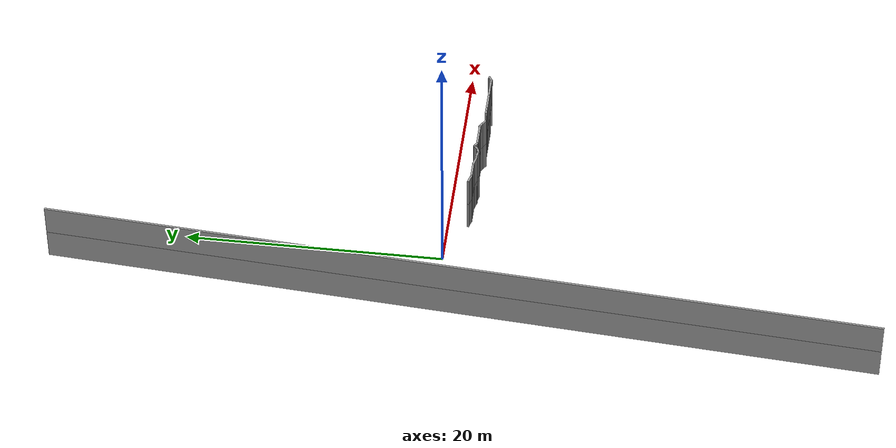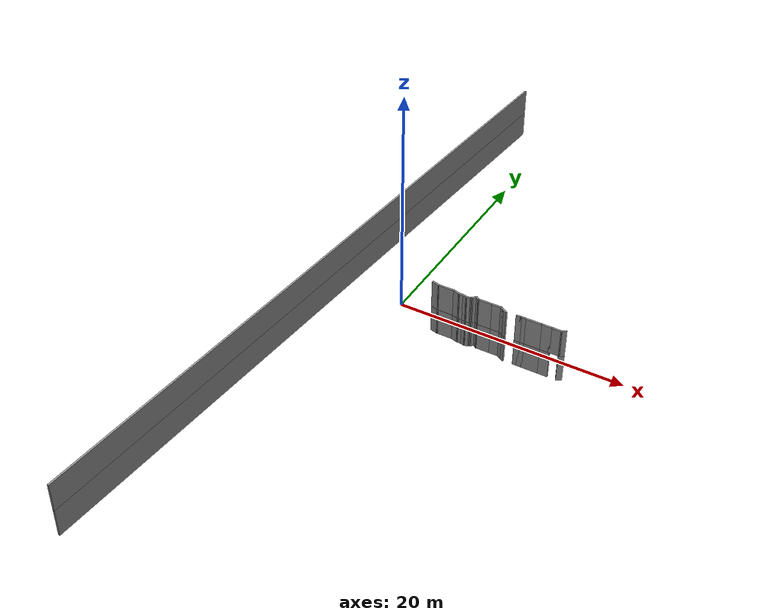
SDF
<sdf version="1.7">
 <model name="EnvDC00">
  <pose>8.4191 -5.62635 0 0 -0 0</pose>
  <link name="Wall_128">
   <collision name="Wall_128_Collision">
    <geometry><box><size>64.2999 0.15 2.5</size></box></geometry>
    <pose>0 0 1.25 0 -0 0</pose>
   </collision>
   <visual name="Wall_128_Visual">
    <pose>0 0 1.25 0 -0 0</pose>
    <geometry><box><size>64.2999 0.15 2.5</size></box></geometry>
    <material>
     <script><uri>file://media/materials/scripts/gazebo.material</uri><name>Gazebo/Grey</name></script>
     <ambient>1 1 1 1</ambient>
    </material>
    <meta><layer>0</layer></meta>
   </visual>
   <pose>-13.8802 3.78282 0 0 -0 -1.64555</pose>
  </link>
  <link name="Wall_143">
   <collision name="Wall_143_Collision">
    <geometry><box><size>0.5 0.15 2.5</size></box></geometry>
    <pose>0 0 1.25 0 -0 0</pose>
   </collision>
   <visual name="Wall_143_Visual">
    <pose>0 0 1.25 0 -0 0</pose>
    <geometry><box><size>0.5 0.15 2.5</size></box></geometry>
    <material>
     <script><uri>file://media/materials/scripts/gazebo.material</uri><name>Gazebo/Grey</name></script>
     <ambient>1 1 1 1</ambient>
    </material>
    <meta><layer>0</layer></meta>
   </visual>
   <pose>6.88604 3.68358 0 0 -0 -2.61799</pose>
  </link>
  <link name="Wall_146">
   <collision name="Wall_146_Collision">
    <geometry><box><size>1 0.15 2.5</size></box></geometry>
    <pose>0 0 1.25 0 -0 0</pose>
   </collision>
   <visual name="Wall_146_Visual">
    <pose>0 0 1.25 0 -0 0</pose>
    <geometry><box><size>1 0.15 2.5</size></box></geometry>
    <material>
     <script><uri>file://media/materials/scripts/gazebo.material</uri><name>Gazebo/Grey</name></script>
     <ambient>1 1 1 1</ambient>
    </material>
    <meta><layer>0</layer></meta>
   </visual>
   <pose>5.45949 3.59608 0 0 -0 3.14159</pose>
  </link>
  <link name="Wall_147">
   <collision name="Wall_147_Collision">
    <geometry><box><size>1.5 0.15 2.5</size></box></geometry>
    <pose>0 0 1.25 0 -0 0</pose>
   </collision>
   <visual name="Wall_147_Visual">
    <pose>0 0 1.25 0 -0 0</pose>
    <geometry><box><size>1.5 0.15 2.5</size></box></geometry>
    <material>
     <script><uri>file://media/materials/scripts/gazebo.material</uri><name>Gazebo/Grey</name></script>
     <ambient>1 1 1 1</ambient>
    </material>
    <meta><layer>0</layer></meta>
   </visual>
   <pose>4.35949 3.59608 0 0 -0 3.14159</pose>
  </link>
  <link name="Wall_148">
   <collision name="Wall_148_Collision">
    <geometry><box><size>0.5 0.15 2.5</size></box></geometry>
    <pose>0 0 1.25 0 -0 0</pose>
   </collision>
   <visual name="Wall_148_Visual">
    <pose>0 0 1.25 0 -0 0</pose>
    <geometry><box><size>0.5 0.15 2.5</size></box></geometry>
    <material>
     <script><uri>file://media/materials/scripts/gazebo.material</uri><name>Gazebo/Grey</name></script>
     <ambient>1 1 1 1</ambient>
    </material>
    <meta><layer>0</layer></meta>
   </visual>
   <pose>3.50949 3.59608 0 0 -0 3.14159</pose>
  </link>
  <link name="Wall_149">
   <collision name="Wall_149_Collision">
    <geometry><box><size>0.5 0.15 2.5</size></box></geometry>
    <pose>0 0 1.25 0 -0 0</pose>
   </collision>
   <visual name="Wall_149_Visual">
    <pose>0 0 1.25 0 -0 0</pose>
    <geometry><box><size>0.5 0.15 2.5</size></box></geometry>
    <material>
     <script><uri>file://media/materials/scripts/gazebo.material</uri><name>Gazebo/Grey</name></script>
     <ambient>1 1 1 1</ambient>
    </material>
    <meta><layer>0</layer></meta>
   </visual>
   <pose>3.15949 3.59608 0 0 -0 3.14159</pose>
  </link>
  <link name="Wall_152">
   <collision name="Wall_152_Collision">
    <geometry><box><size>0.5 0.15 2.5</size></box></geometry>
    <pose>0 0 1.25 0 -0 0</pose>
   </collision>
   <visual name="Wall_152_Visual">
    <pose>0 0 1.25 0 -0 0</pose>
    <geometry><box><size>0.5 0.15 2.5</size></box></geometry>
    <material>
     <script><uri>file://media/materials/scripts/gazebo.material</uri><name>Gazebo/Grey</name></script>
     <ambient>1 1 1 1</ambient>
    </material>
    <meta><layer>0</layer></meta>
   </visual>
   <pose>1.91531 3.61888 0 0 -0 2.61799</pose>
  </link>
  <link name="Wall_153">
   <collision name="Wall_153_Collision">
    <geometry><box><size>0.5 0.15 2.5</size></box></geometry>
    <pose>0 0 1.25 0 -0 0</pose>
   </collision>
   <visual name="Wall_153_Visual">
    <pose>0 0 1.25 0 -0 0</pose>
    <geometry><box><size>0.5 0.15 2.5</size></box></geometry>
    <material>
     <script><uri>file://media/materials/scripts/gazebo.material</uri><name>Gazebo/Grey</name></script>
     <ambient>1 1 1 1</ambient>
    </material>
    <meta><layer>0</layer></meta>
   </visual>
   <pose>1.6122 3.79388 0 0 -0 2.61799</pose>
  </link>
  <link name="Wall_154">
   <collision name="Wall_154_Collision">
    <geometry><box><size>1 0.15 2.5</size></box></geometry>
    <pose>0 0 1.25 0 -0 0</pose>
   </collision>
   <visual name="Wall_154_Visual">
    <pose>0 0 1.25 0 -0 0</pose>
    <geometry><box><size>1 0.15 2.5</size></box></geometry>
    <material>
     <script><uri>file://media/materials/scripts/gazebo.material</uri><name>Gazebo/Grey</name></script>
     <ambient>1 1 1 1</ambient>
    </material>
    <meta><layer>0</layer></meta>
   </visual>
   <pose>1.03564 3.88138 0 0 -0 3.14159</pose>
  </link>
  <link name="Wall_155">
   <collision name="Wall_155_Collision">
    <geometry><box><size>1.25 0.15 2.5</size></box></geometry>
    <pose>0 0 1.25 0 -0 0</pose>
   </collision>
   <visual name="Wall_155_Visual">
    <pose>0 0 1.25 0 -0 0</pose>
    <geometry><box><size>1.25 0.15 2.5</size></box></geometry>
    <material>
     <script><uri>file://media/materials/scripts/gazebo.material</uri><name>Gazebo/Grey</name></script>
     <ambient>1 1 1 1</ambient>
    </material>
    <meta><layer>0</layer></meta>
   </visual>
   <pose>0.060643 3.88138 0 0 -0 3.14159</pose>
  </link>
  <link name="Wall_156">
   <collision name="Wall_156_Collision">
    <geometry><box><size>0.5 0.15 2.5</size></box></geometry>
    <pose>0 0 1.25 0 -0 0</pose>
   </collision>
   <visual name="Wall_156_Visual">
    <pose>0 0 1.25 0 -0 0</pose>
    <geometry><box><size>0.5 0.15 2.5</size></box></geometry>
    <material>
     <script><uri>file://media/materials/scripts/gazebo.material</uri><name>Gazebo/Grey</name></script>
     <ambient>1 1 1 1</ambient>
    </material>
    <meta><layer>0</layer></meta>
   </visual>
   <pose>-0.640912 3.96888 0 0 -0 2.61799</pose>
  </link>
  <link name="Wall_157">
   <collision name="Wall_157_Collision">
    <geometry><box><size>0.15 0.15 2.5</size></box></geometry>
    <pose>0 0 1.25 0 -0 0</pose>
   </collision>
   <visual name="Wall_157_Visual">
    <pose>0 0 1.25 0 -0 0</pose>
    <geometry><box><size>0.15 0.15 2.5</size></box></geometry>
    <material>
     <script><uri>file://media/materials/scripts/gazebo.material</uri><name>Gazebo/Grey</name></script>
     <ambient>1 1 1 1</ambient>
    </material>
    <meta><layer>0</layer></meta>
   </visual>
   <pose>-0.792467 4.05638 0 0 -0 0</pose>
  </link>
  <link name="Wall_158">
   <collision name="Wall_158_Collision">
    <geometry><box><size>0.5 0.15 2.5</size></box></geometry>
    <pose>0 0 1.25 0 -0 0</pose>
   </collision>
   <visual name="Wall_158_Visual">
    <pose>0 0 1.25 0 -0 0</pose>
    <geometry><box><size>0.5 0.15 2.5</size></box></geometry>
    <material>
     <script><uri>file://media/materials/scripts/gazebo.material</uri><name>Gazebo/Grey</name></script>
     <ambient>1 1 1 1</ambient>
    </material>
    <meta><layer>0</layer></meta>
   </visual>
   <pose>-0.91621 3.93263 0 0 -0 -2.35619</pose>
  </link>
  <link name="Wall_159">
   <collision name="Wall_159_Collision">
    <geometry><box><size>0.25 0.15 2.5</size></box></geometry>
    <pose>0 0 1.25 0 -0 0</pose>
   </collision>
   <visual name="Wall_159_Visual">
    <pose>0 0 1.25 0 -0 0</pose>
    <geometry><box><size>0.25 0.15 2.5</size></box></geometry>
    <material>
     <script><uri>file://media/materials/scripts/gazebo.material</uri><name>Gazebo/Grey</name></script>
     <ambient>1 1 1 1</ambient>
    </material>
    <meta><layer>0</layer></meta>
   </visual>
   <pose>-1.08326 3.78389 0 0 -0 -2.61799</pose>
  </link>
  <link name="Wall_160">
   <collision name="Wall_160_Collision">
    <geometry><box><size>0.5 0.15 2.5</size></box></geometry>
    <pose>0 0 1.25 0 -0 0</pose>
   </collision>
   <visual name="Wall_160_Visual">
    <pose>0 0 1.25 0 -0 0</pose>
    <geometry><box><size>0.5 0.15 2.5</size></box></geometry>
    <material>
     <script><uri>file://media/materials/scripts/gazebo.material</uri><name>Gazebo/Grey</name></script>
     <ambient>1 1 1 1</ambient>
    </material>
    <meta><layer>0</layer></meta>
   </visual>
   <pose>-1.29559 3.7136 0 0 -0 -2.87979</pose>
  </link>
  <link name="Wall_162">
   <collision name="Wall_162_Collision">
    <geometry><box><size>0.5 0.15 2.5</size></box></geometry>
    <pose>0 0 1.25 0 -0 0</pose>
   </collision>
   <visual name="Wall_162_Visual">
    <pose>0 0 1.25 0 -0 0</pose>
    <geometry><box><size>0.5 0.15 2.5</size></box></geometry>
    <material>
     <script><uri>file://media/materials/scripts/gazebo.material</uri><name>Gazebo/Grey</name></script>
     <ambient>1 1 1 1</ambient>
    </material>
    <meta><layer>0</layer></meta>
   </visual>
   <pose>-1.63367 3.7136 0 0 -0 2.87979</pose>
  </link>
  <link name="Wall_163">
   <collision name="Wall_163_Collision">
    <geometry><box><size>0.5 0.15 2.5</size></box></geometry>
    <pose>0 0 1.25 0 -0 0</pose>
   </collision>
   <visual name="Wall_163_Visual">
    <pose>0 0 1.25 0 -0 0</pose>
    <geometry><box><size>0.5 0.15 2.5</size></box></geometry>
    <material>
     <script><uri>file://media/materials/scripts/gazebo.material</uri><name>Gazebo/Grey</name></script>
     <ambient>1 1 1 1</ambient>
    </material>
    <meta><layer>0</layer></meta>
   </visual>
   <pose>-1.97771 3.75889 0 0 -0 3.14159</pose>
  </link>
  <link name="Wall_164">
   <collision name="Wall_164_Collision">
    <geometry><box><size>0.75 0.15 2.5</size></box></geometry>
    <pose>0 0 1.25 0 -0 0</pose>
   </collision>
   <visual name="Wall_164_Visual">
    <pose>0 0 1.25 0 -0 0</pose>
    <geometry><box><size>0.75 0.15 2.5</size></box></geometry>
    <material>
     <script><uri>file://media/materials/scripts/gazebo.material</uri><name>Gazebo/Grey</name></script>
     <ambient>1 1 1 1</ambient>
    </material>
    <meta><layer>0</layer></meta>
   </visual>
   <pose>-2.44248 3.83653 0 0 -0 2.87979</pose>
  </link>
  <link name="Wall_165">
   <collision name="Wall_165_Collision">
    <geometry><box><size>1.5 0.15 2.5</size></box></geometry>
    <pose>0 0 1.25 0 -0 0</pose>
   </collision>
   <visual name="Wall_165_Visual">
    <pose>0 0 1.25 0 -0 0</pose>
    <geometry><box><size>1.5 0.15 2.5</size></box></geometry>
    <material>
     <script><uri>file://media/materials/scripts/gazebo.material</uri><name>Gazebo/Grey</name></script>
     <ambient>1 1 1 1</ambient>
    </material>
    <meta><layer>0</layer></meta>
   </visual>
   <pose>-3.40726 3.91418 0 0 -0 3.14159</pose>
  </link>
  <link name="Wall_166">
   <collision name="Wall_166_Collision">
    <geometry><box><size>0.75 0.15 2.5</size></box></geometry>
    <pose>0 0 1.25 0 -0 0</pose>
   </collision>
   <visual name="Wall_166_Visual">
    <pose>0 0 1.25 0 -0 0</pose>
    <geometry><box><size>0.75 0.15 2.5</size></box></geometry>
    <material>
     <script><uri>file://media/materials/scripts/gazebo.material</uri><name>Gazebo/Grey</name></script>
     <ambient>1 1 1 1</ambient>
    </material>
    <meta><layer>0</layer></meta>
   </visual>
   <pose>-4.37204 3.99183 0 0 -0 2.87979</pose>
  </link>
  <link name="Wall_327">
   <collision name="Wall_327_Collision">
    <geometry><box><size>64.2999 0.15 2.5</size></box></geometry>
    <pose>0 0 1.25 0 -0 0</pose>
   </collision>
   <visual name="Wall_327_Visual">
    <pose>0 0 1.25 0 -0 0</pose>
    <geometry><box><size>64.2999 0.15 2.5</size></box></geometry>
    <material>
     <script><uri>file://media/materials/scripts/gazebo.material</uri><name>Gazebo/Grey</name></script>
     <ambient>1 1 1 1</ambient>
    </material>
    <meta><layer>1</layer></meta>
   </visual>
   <pose>-13.8802 3.78282 2.5 0 -0 -1.64555</pose>
  </link>
  <link name="Wall_333">
   <collision name="Wall_333_Collision">
    <geometry><box><size>0.5 0.15 2.5</size></box></geometry>
    <pose>0 0 1.25 0 -0 0</pose>
   </collision>
   <visual name="Wall_333_Visual">
    <pose>0 0 1.25 0 -0 0</pose>
    <geometry><box><size>0.5 0.15 2.5</size></box></geometry>
    <material>
     <script><uri>file://media/materials/scripts/gazebo.material</uri><name>Gazebo/Grey</name></script>
     <ambient>1 1 1 1</ambient>
    </material>
    <meta><layer>1</layer></meta>
   </visual>
   <pose>6.88604 3.68358 2.5 0 -0 -2.61799</pose>
  </link>
  <link name="Wall_334">
   <collision name="Wall_334_Collision">
    <geometry><box><size>1 0.15 2.5</size></box></geometry>
    <pose>0 0 1.25 0 -0 0</pose>
   </collision>
   <visual name="Wall_334_Visual">
    <pose>0 0 1.25 0 -0 0</pose>
    <geometry><box><size>1 0.15 2.5</size></box></geometry>
    <material>
     <script><uri>file://media/materials/scripts/gazebo.material</uri><name>Gazebo/Grey</name></script>
     <ambient>1 1 1 1</ambient>
    </material>
    <meta><layer>1</layer></meta>
   </visual>
   <pose>6.30949 3.59608 2.5 0 -0 3.14159</pose>
  </link>
  <link name="Wall_335">
   <collision name="Wall_335_Collision">
    <geometry><box><size>1 0.15 2.5</size></box></geometry>
    <pose>0 0 1.25 0 -0 0</pose>
   </collision>
   <visual name="Wall_335_Visual">
    <pose>0 0 1.25 0 -0 0</pose>
    <geometry><box><size>1 0.15 2.5</size></box></geometry>
    <material>
     <script><uri>file://media/materials/scripts/gazebo.material</uri><name>Gazebo/Grey</name></script>
     <ambient>1 1 1 1</ambient>
    </material>
    <meta><layer>1</layer></meta>
   </visual>
   <pose>5.45949 3.59608 2.5 0 -0 3.14159</pose>
  </link>
  <link name="Wall_336">
   <collision name="Wall_336_Collision">
    <geometry><box><size>1.5 0.15 2.5</size></box></geometry>
    <pose>0 0 1.25 0 -0 0</pose>
   </collision>
   <visual name="Wall_336_Visual">
    <pose>0 0 1.25 0 -0 0</pose>
    <geometry><box><size>1.5 0.15 2.5</size></box></geometry>
    <material>
     <script><uri>file://media/materials/scripts/gazebo.material</uri><name>Gazebo/Grey</name></script>
     <ambient>1 1 1 1</ambient>
    </material>
    <meta><layer>1</layer></meta>
   </visual>
   <pose>4.35949 3.59608 2.5 0 -0 3.14159</pose>
  </link>
  <link name="Wall_337">
   <collision name="Wall_337_Collision">
    <geometry><box><size>0.5 0.15 2.5</size></box></geometry>
    <pose>0 0 1.25 0 -0 0</pose>
   </collision>
   <visual name="Wall_337_Visual">
    <pose>0 0 1.25 0 -0 0</pose>
    <geometry><box><size>0.5 0.15 2.5</size></box></geometry>
    <material>
     <script><uri>file://media/materials/scripts/gazebo.material</uri><name>Gazebo/Grey</name></script>
     <ambient>1 1 1 1</ambient>
    </material>
    <meta><layer>1</layer></meta>
   </visual>
   <pose>3.50949 3.59608 2.5 0 -0 3.14159</pose>
  </link>
  <link name="Wall_338">
   <collision name="Wall_338_Collision">
    <geometry><box><size>0.5 0.15 2.5</size></box></geometry>
    <pose>0 0 1.25 0 -0 0</pose>
   </collision>
   <visual name="Wall_338_Visual">
    <pose>0 0 1.25 0 -0 0</pose>
    <geometry><box><size>0.5 0.15 2.5</size></box></geometry>
    <material>
     <script><uri>file://media/materials/scripts/gazebo.material</uri><name>Gazebo/Grey</name></script>
     <ambient>1 1 1 1</ambient>
    </material>
    <meta><layer>1</layer></meta>
   </visual>
   <pose>3.15949 3.59608 2.5 0 -0 3.14159</pose>
  </link>
  <link name="Wall_341">
   <collision name="Wall_341_Collision">
    <geometry><box><size>0.5 0.15 2.5</size></box></geometry>
    <pose>0 0 1.25 0 -0 0</pose>
   </collision>
   <visual name="Wall_341_Visual">
    <pose>0 0 1.25 0 -0 0</pose>
    <geometry><box><size>0.5 0.15 2.5</size></box></geometry>
    <material>
     <script><uri>file://media/materials/scripts/gazebo.material</uri><name>Gazebo/Grey</name></script>
     <ambient>1 1 1 1</ambient>
    </material>
    <meta><layer>1</layer></meta>
   </visual>
   <pose>1.91531 3.61888 2.5 0 -0 2.61799</pose>
  </link>
  <link name="Wall_342">
   <collision name="Wall_342_Collision">
    <geometry><box><size>0.5 0.15 2.5</size></box></geometry>
    <pose>0 0 1.25 0 -0 0</pose>
   </collision>
   <visual name="Wall_342_Visual">
    <pose>0 0 1.25 0 -0 0</pose>
    <geometry><box><size>0.5 0.15 2.5</size></box></geometry>
    <material>
     <script><uri>file://media/materials/scripts/gazebo.material</uri><name>Gazebo/Grey</name></script>
     <ambient>1 1 1 1</ambient>
    </material>
    <meta><layer>1</layer></meta>
   </visual>
   <pose>1.6122 3.79388 2.5 0 -0 2.61799</pose>
  </link>
  <link name="Wall_343">
   <collision name="Wall_343_Collision">
    <geometry><box><size>1 0.15 2.5</size></box></geometry>
    <pose>0 0 1.25 0 -0 0</pose>
   </collision>
   <visual name="Wall_343_Visual">
    <pose>0 0 1.25 0 -0 0</pose>
    <geometry><box><size>1 0.15 2.5</size></box></geometry>
    <material>
     <script><uri>file://media/materials/scripts/gazebo.material</uri><name>Gazebo/Grey</name></script>
     <ambient>1 1 1 1</ambient>
    </material>
    <meta><layer>1</layer></meta>
   </visual>
   <pose>1.03564 3.88138 2.5 0 -0 3.14159</pose>
  </link>
  <link name="Wall_344">
   <collision name="Wall_344_Collision">
    <geometry><box><size>1.25 0.15 2.5</size></box></geometry>
    <pose>0 0 1.25 0 -0 0</pose>
   </collision>
   <visual name="Wall_344_Visual">
    <pose>0 0 1.25 0 -0 0</pose>
    <geometry><box><size>1.25 0.15 2.5</size></box></geometry>
    <material>
     <script><uri>file://media/materials/scripts/gazebo.material</uri><name>Gazebo/Grey</name></script>
     <ambient>1 1 1 1</ambient>
    </material>
    <meta><layer>1</layer></meta>
   </visual>
   <pose>0.060642 3.88138 2.5 0 -0 3.14159</pose>
  </link>
  <link name="Wall_345">
   <collision name="Wall_345_Collision">
    <geometry><box><size>0.5 0.15 2.5</size></box></geometry>
    <pose>0 0 1.25 0 -0 0</pose>
   </collision>
   <visual name="Wall_345_Visual">
    <pose>0 0 1.25 0 -0 0</pose>
    <geometry><box><size>0.5 0.15 2.5</size></box></geometry>
    <material>
     <script><uri>file://media/materials/scripts/gazebo.material</uri><name>Gazebo/Grey</name></script>
     <ambient>1 1 1 1</ambient>
    </material>
    <meta><layer>1</layer></meta>
   </visual>
   <pose>-0.640912 3.96888 2.5 0 -0 2.61799</pose>
  </link>
  <link name="Wall_346">
   <collision name="Wall_346_Collision">
    <geometry><box><size>0.15 0.15 2.5</size></box></geometry>
    <pose>0 0 1.25 0 -0 0</pose>
   </collision>
   <visual name="Wall_346_Visual">
    <pose>0 0 1.25 0 -0 0</pose>
    <geometry><box><size>0.15 0.15 2.5</size></box></geometry>
    <material>
     <script><uri>file://media/materials/scripts/gazebo.material</uri><name>Gazebo/Grey</name></script>
     <ambient>1 1 1 1</ambient>
    </material>
    <meta><layer>1</layer></meta>
   </visual>
   <pose>-0.792467 4.05638 2.5 0 -0 0</pose>
  </link>
  <link name="Wall_347">
   <collision name="Wall_347_Collision">
    <geometry><box><size>0.5 0.15 2.5</size></box></geometry>
    <pose>0 0 1.25 0 -0 0</pose>
   </collision>
   <visual name="Wall_347_Visual">
    <pose>0 0 1.25 0 -0 0</pose>
    <geometry><box><size>0.5 0.15 2.5</size></box></geometry>
    <material>
     <script><uri>file://media/materials/scripts/gazebo.material</uri><name>Gazebo/Grey</name></script>
     <ambient>1 1 1 1</ambient>
    </material>
    <meta><layer>1</layer></meta>
   </visual>
   <pose>-0.91621 3.93263 2.5 0 -0 -2.35619</pose>
  </link>
  <link name="Wall_348">
   <collision name="Wall_348_Collision">
    <geometry><box><size>0.25 0.15 2.5</size></box></geometry>
    <pose>0 0 1.25 0 -0 0</pose>
   </collision>
   <visual name="Wall_348_Visual">
    <pose>0 0 1.25 0 -0 0</pose>
    <geometry><box><size>0.25 0.15 2.5</size></box></geometry>
    <material>
     <script><uri>file://media/materials/scripts/gazebo.material</uri><name>Gazebo/Grey</name></script>
     <ambient>1 1 1 1</ambient>
    </material>
    <meta><layer>1</layer></meta>
   </visual>
   <pose>-1.08326 3.78389 2.5 0 -0 -2.61799</pose>
  </link>
  <link name="Wall_349">
   <collision name="Wall_349_Collision">
    <geometry><box><size>0.5 0.15 2.5</size></box></geometry>
    <pose>0 0 1.25 0 -0 0</pose>
   </collision>
   <visual name="Wall_349_Visual">
    <pose>0 0 1.25 0 -0 0</pose>
    <geometry><box><size>0.5 0.15 2.5</size></box></geometry>
    <material>
     <script><uri>file://media/materials/scripts/gazebo.material</uri><name>Gazebo/Grey</name></script>
     <ambient>1 1 1 1</ambient>
    </material>
    <meta><layer>1</layer></meta>
   </visual>
   <pose>-1.29559 3.7136 2.5 0 -0 -2.87979</pose>
  </link>
  <link name="Wall_350">
   <collision name="Wall_350_Collision">
    <geometry><box><size>0.5 0.15 2.5</size></box></geometry>
    <pose>0 0 1.25 0 -0 0</pose>
   </collision>
   <visual name="Wall_350_Visual">
    <pose>0 0 1.25 0 -0 0</pose>
    <geometry><box><size>0.5 0.15 2.5</size></box></geometry>
    <material>
     <script><uri>file://media/materials/scripts/gazebo.material</uri><name>Gazebo/Grey</name></script>
     <ambient>1 1 1 1</ambient>
    </material>
    <meta><layer>1</layer></meta>
   </visual>
   <pose>-1.63367 3.7136 2.5 0 -0 2.87979</pose>
  </link>
  <link name="Wall_351">
   <collision name="Wall_351_Collision">
    <geometry><box><size>0.5 0.15 2.5</size></box></geometry>
    <pose>0 0 1.25 0 -0 0</pose>
   </collision>
   <visual name="Wall_351_Visual">
    <pose>0 0 1.25 0 -0 0</pose>
    <geometry><box><size>0.5 0.15 2.5</size></box></geometry>
    <material>
     <script><uri>file://media/materials/scripts/gazebo.material</uri><name>Gazebo/Grey</name></script>
     <ambient>1 1 1 1</ambient>
    </material>
    <meta><layer>1</layer></meta>
   </visual>
   <pose>-1.97771 3.75889 2.5 0 -0 3.14159</pose>
  </link>
  <link name="Wall_352">
   <collision name="Wall_352_Collision">
    <geometry><box><size>0.75 0.15 2.5</size></box></geometry>
    <pose>0 0 1.25 0 -0 0</pose>
   </collision>
   <visual name="Wall_352_Visual">
    <pose>0 0 1.25 0 -0 0</pose>
    <geometry><box><size>0.75 0.15 2.5</size></box></geometry>
    <material>
     <script><uri>file://media/materials/scripts/gazebo.material</uri><name>Gazebo/Grey</name></script>
     <ambient>1 1 1 1</ambient>
    </material>
    <meta><layer>1</layer></meta>
   </visual>
   <pose>-2.44248 3.83653 2.5 0 -0 2.87979</pose>
  </link>
  <link name="Wall_353">
   <collision name="Wall_353_Collision">
    <geometry><box><size>1.5 0.15 2.5</size></box></geometry>
    <pose>0 0 1.25 0 -0 0</pose>
   </collision>
   <visual name="Wall_353_Visual">
    <pose>0 0 1.25 0 -0 0</pose>
    <geometry><box><size>1.5 0.15 2.5</size></box></geometry>
    <material>
     <script><uri>file://media/materials/scripts/gazebo.material</uri><name>Gazebo/Grey</name></script>
     <ambient>1 1 1 1</ambient>
    </material>
    <meta><layer>1</layer></meta>
   </visual>
   <pose>-3.40726 3.91418 2.5 0 -0 3.14159</pose>
  </link>
  <link name="Wall_354">
   <collision name="Wall_354_Collision">
    <geometry><box><size>0.75 0.15 2.5</size></box></geometry>
    <pose>0 0 1.25 0 -0 0</pose>
   </collision>
   <visual name="Wall_354_Visual">
    <pose>0 0 1.25 0 -0 0</pose>
    <geometry><box><size>0.75 0.15 2.5</size></box></geometry>
    <material>
     <script><uri>file://media/materials/scripts/gazebo.material</uri><name>Gazebo/Grey</name></script>
     <ambient>1 1 1 1</ambient>
    </material>
    <meta><layer>1</layer></meta>
   </visual>
   <pose>-4.37204 3.99183 2.5 0 -0 2.87979</pose>
  </link>
  <static>1</static>
 </model>
</sdf>
